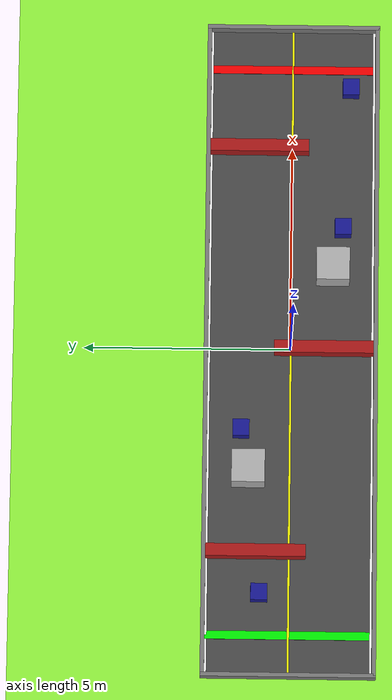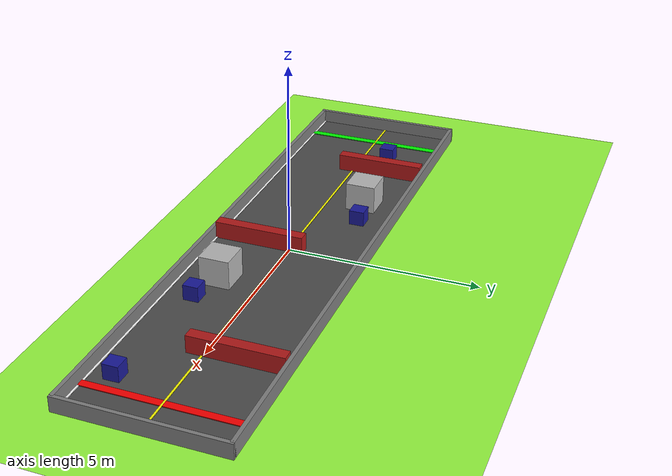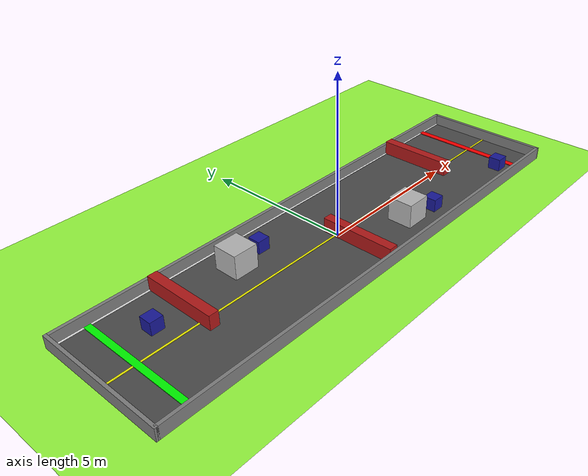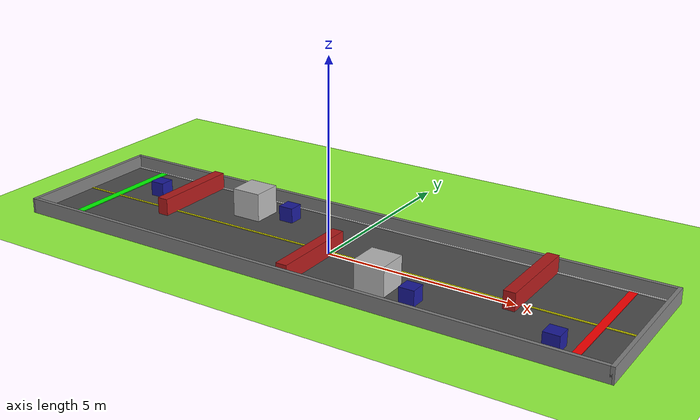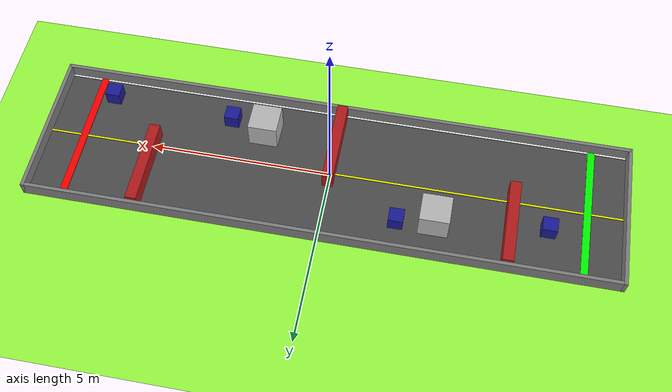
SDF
<?xml version="1.0" encoding="UTF-8"?>
<sdf version="1.9">
  <world name="lawn">
    <plugin
      filename="gz-sim-physics-system"
      name="gz::sim::systems::Physics">
    </plugin>
    <plugin
      filename="gz-sim-user-commands-system"
      name="gz::sim::systems::UserCommands">
    </plugin>
    <plugin
      filename="gz-sim-scene-broadcaster-system"
      name="gz::sim::systems::SceneBroadcaster">
    </plugin>
    <plugin
      filename="gz-sim-sensors-system"
      name="gz::sim::systems::Sensors">
      <render_engine>ogre2</render_engine>
    </plugin>
    <plugin
      filename="gz-sim-imu-system"
      name="gz::sim::systems::Imu">
    </plugin>
    <physics type="ode">
      <max_step_size>0.004</max_step_size>
      <real_time_factor>1.0</real_time_factor>
      <real_time_update_rate>250</real_time_update_rate>
    </physics>
    <gravity>0 0 -9.8</gravity>
    <magnetic_field>6e-06 2.3e-05 -4.2e-05</magnetic_field>
    <atmosphere type="adiabatic"/>
    <scene>
      <sky><clouds><speed>12</speed></clouds></sky>
      <grid>true</grid>
      <ambient>0.5 0.5 0.5 0.3</ambient>
      <background>0.3 0.3 0.3 0.3</background>
      <shadows>true</shadows>
    </scene>
    <model name="ground_plane">
      <static>true</static>
      <link name="link">
        <collision name="collision">
          <geometry><plane><normal>0 0 1</normal><size>1 1</size></plane></geometry>
          <surface><friction><ode><mu>0.6</mu><mu2>0.6</mu2></ode></friction><bounce/>
          <contact><collide_bitmask>65535</collide_bitmask><ode><min_depth>0.005</min_depth><kp>1e8</kp></ode></contact></surface>
        </collision>
        <visual name="visual">
          <cast_shadows>false</cast_shadows>
          <geometry><plane><normal>0 0 1</normal><size>400 400</size></plane></geometry>
          <material><diffuse>0.6 1.0 0.25 0.5</diffuse><specular>0 0 0 0</specular><emissive>0 0 0 0</emissive></material>
        </visual>
        <pose>0 0 0 0 -0 0</pose>
        <inertial><pose>0 0 0 0 -0 0</pose><mass>1</mass>
          <inertia><ixx>1</ixx><ixy>0</ixy><ixz>0</ixz><iyy>1</iyy><iyz>0</iyz><izz>1</izz></inertia></inertial>
        <enable_wind>false</enable_wind>
      </link>
      <pose>0 0 0 0 -0 0</pose>
      <self_collide>false</self_collide>
    </model>
    <light name="sunUTC" type="directional">
      <pose>0 0 500 0 -0 0</pose><cast_shadows>true</cast_shadows><intensity>1</intensity>
      <direction>0.001 0.625 -0.78</direction><diffuse>0.904 0.904 0.904 1</diffuse><specular>0.271 0.271 0.271 1</specular>
      <attenuation><range>2000</range><linear>0</linear><constant>1</constant><quadratic>0</quadratic></attenuation>
      <spot><inner_angle>0</inner_angle><outer_angle>0</outer_angle><falloff>0</falloff></spot>
    </light>
    <light type="directional" name="sun_2">
      <cast_shadows>true</cast_shadows><pose>200 200 200 0 0 0</pose>
      <diffuse>0.5 0.5 0.5 0.3</diffuse><specular>0.2 0.2 0.2 0.3</specular>
      <attenuation><range>2000</range><constant>1</constant><linear>0</linear><quadratic>0</quadratic></attenuation>
      <direction>0.01 0.01 -0.9</direction>
    </light>
    <spherical_coordinates>
      <surface_model>EARTH_WGS84</surface_model>
      <world_frame_orientation>ENU</world_frame_orientation>
      <latitude_deg>47.397971057728974</latitude_deg>
      <longitude_deg> 8.546163739800146</longitude_deg>
      <elevation>0</elevation>
    </spherical_coordinates>
    <model name="strasse">
      <static>true</static>
      <pose>0 0 0.02 0 0 0</pose>
      <link name="link">
        <visual name="visual"><geometry><box><size>16 4 0.05</size></box></geometry>
          <material><ambient>0.2 0.2 0.2 1</ambient><diffuse>0.3 0.3 0.3 1</diffuse></material></visual>
        <collision name="collision"><geometry><box><size>16 4 0.05</size></box></geometry></collision>
      </link>
    </model>
    <model name="startlinie">
      <static>true</static>
      <pose>-7 0 0.055 0 0 0</pose>
      <link name="link"><visual name="visual"><geometry><box><size>0.2 4 0.02</size></box></geometry>
        <material><diffuse>0 1 0 1</diffuse></material></visual></link>
    </model>
    <model name="ziellinie">
      <static>true</static>
      <pose>7 0 0.055 0 0 0</pose>
      <link name="link"><visual name="visual"><geometry><box><size>0.2 4 0.02</size></box></geometry>
        <material><diffuse>1 0 0 1</diffuse></material></visual></link>
    </model>
    <model name="hindernis_1">
      <static>true</static>
      <pose>-3 1 0.4 0 0 0</pose>
      <link name="link">
        <visual name="visual"><geometry><box><size>0.8 0.8 0.8</size></box></geometry></visual>
        <collision name="collision"><geometry><box><size>0.8 0.8 0.8</size></box></geometry></collision>
      </link>
    </model>
    <model name="hindernis_2">
      <static>true</static>
      <pose>2 -1 0.4 0 0 0</pose>
      <link name="link">
        <visual name="visual"><geometry><box><size>0.8 0.8 0.8</size></box></geometry></visual>
        <collision name="collision"><geometry><box><size>0.8 0.8 0.8</size></box></geometry></collision>
      </link>
    </model>
    <model name="rand_links">
      <static>true</static>
      <pose>0 2 0.055 0 0 0</pose>
      <link name="link"><visual name="visual"><geometry><box><size>16 0.1 0.02</size></box></geometry>
        <material><diffuse>1 1 1 1</diffuse></material></visual></link>
    </model>
    <model name="rand_rechts">
      <static>true</static>
      <pose>0 -2 0.055 0 0 0</pose>
      <link name="link"><visual name="visual"><geometry><box><size>16 0.1 0.02</size></box></geometry>
        <material><diffuse>1 1 1 1</diffuse></material></visual></link>
    </model>
    <model name="mittellinie">
      <static>true</static>
      <pose>0 0 0.055 0 0 0</pose>
      <link name="link"><visual name="visual"><geometry><box><size>16 0.05 0.02</size></box></geometry>
        <material><diffuse>1 1 0 1</diffuse></material></visual></link>
    </model>
    <model name="mauer_links">
      <static>true</static>
      <pose>0 2.05 0.2 0 0 0</pose>
      <link name="link">
        <visual name="visual"><geometry><box><size>16 0.1 0.4</size></box></geometry>
          <material><diffuse>0.5 0.5 0.5 1</diffuse></material></visual>
        <collision name="collision"><geometry><box><size>16 0.1 0.4</size></box></geometry></collision>
      </link>
    </model>
    <model name="mauer_rechts">
      <static>true</static>
      <pose>0 -2.05 0.2 0 0 0</pose>
      <link name="link">
        <visual name="visual"><geometry><box><size>16 0.1 0.4</size></box></geometry>
          <material><diffuse>0.5 0.5 0.5 1</diffuse></material></visual>
        <collision name="collision"><geometry><box><size>16 0.1 0.4</size></box></geometry></collision>
      </link>
    </model>
    <model name="mauer_start">
      <static>true</static>
      <pose>-8 0 0.2 0 0 0</pose>
      <link name="link">
        <visual name="visual"><geometry><box><size>0.1 4.2 0.4</size></box></geometry>
          <material><diffuse>0.5 0.5 0.5 1</diffuse></material></visual>
        <collision name="collision"><geometry><box><size>0.1 4.2 0.4</size></box></geometry></collision>
      </link>
    </model>
    <model name="mauer_ziel">
      <static>true</static>
      <pose>8 0 0.2 0 0 0</pose>
      <link name="link">
        <visual name="visual"><geometry><box><size>0.1 4.2 0.4</size></box></geometry>
          <material><diffuse>0.5 0.5 0.5 1</diffuse></material></visual>
        <collision name="collision"><geometry><box><size>0.1 4.2 0.4</size></box></geometry></collision>
      </link>
    </model>
    <model name="barriere_1">
      <static>true</static>
      <pose>-5 0.8 0.25 0 0 0</pose>
      <link name="link">
        <visual name="visual"><geometry><box><size>0.3 2.4 0.5</size></box></geometry><material><diffuse>0.7 0.1 0.1 1</diffuse></material></visual>
        <collision name="collision"><geometry><box><size>0.3 2.4 0.5</size></box></geometry></collision>
      </link>
    </model>
    <model name="barriere_2">
      <static>true</static>
      <pose>0 -0.8 0.25 0 0 0</pose>
      <link name="link">
        <visual name="visual"><geometry><box><size>0.3 2.4 0.5</size></box></geometry><material><diffuse>0.7 0.1 0.1 1</diffuse></material></visual>
        <collision name="collision"><geometry><box><size>0.3 2.4 0.5</size></box></geometry></collision>
      </link>
    </model>
    <model name="barriere_3">
      <static>true</static>
      <pose>5 0.8 0.25 0 0 0</pose>
      <link name="link">
        <visual name="visual"><geometry><box><size>0.3 2.4 0.5</size></box></geometry><material><diffuse>0.7 0.1 0.1 1</diffuse></material></visual>
        <collision name="collision"><geometry><box><size>0.3 2.4 0.5</size></box></geometry></collision>
      </link>
    </model>
    <model name="wuerfel_1">
      <static>true</static>
      <pose>-6 0.71 0.25 0 0 0</pose>
      <link name="link">
        <visual name="visual"><geometry><box><size>0.4 0.4 0.4</size></box></geometry><material><diffuse>0.1 0.1 0.6 1</diffuse></material></visual>
        <collision name="collision"><geometry><box><size>0.4 0.4 0.4</size></box></geometry></collision>
      </link>
    </model>
    <model name="wuerfel_3">
      <static>true</static>
      <pose>-2 1.18 0.25 0 0 0</pose>
      <link name="link">
        <visual name="visual"><geometry><box><size>0.4 0.4 0.4</size></box></geometry><material><diffuse>0.1 0.1 0.6 1</diffuse></material></visual>
        <collision name="collision"><geometry><box><size>0.4 0.4 0.4</size></box></geometry></collision>
      </link>
    </model>
    <model name="wuerfel_4">
      <static>true</static>
      <pose>3 -1.24 0.25 0 0 0</pose>
      <link name="link">
        <visual name="visual"><geometry><box><size>0.4 0.4 0.4</size></box></geometry><material><diffuse>0.1 0.1 0.6 1</diffuse></material></visual>
        <collision name="collision"><geometry><box><size>0.4 0.4 0.4</size></box></geometry></collision>
      </link>
    </model>
    <model name="wuerfel_6">
      <static>true</static>
      <pose>6.5 -1.41 0.25 0 0 0</pose>
      <link name="link">
        <visual name="visual"><geometry><box><size>0.4 0.4 0.4</size></box></geometry><material><diffuse>0.1 0.1 0.6 1</diffuse></material></visual>
        <collision name="collision"><geometry><box><size>0.4 0.4 0.4</size></box></geometry></collision>
      </link>
    </model>
  </world>
</sdf>
